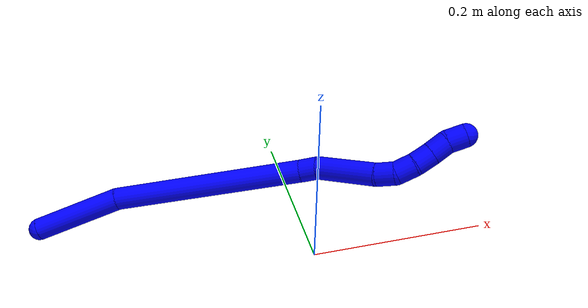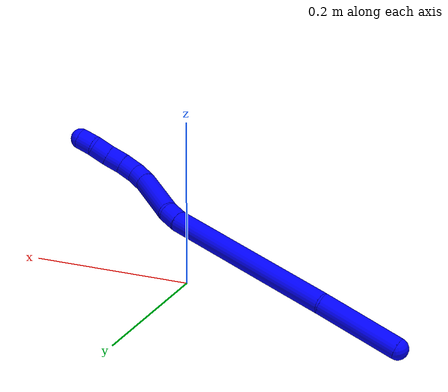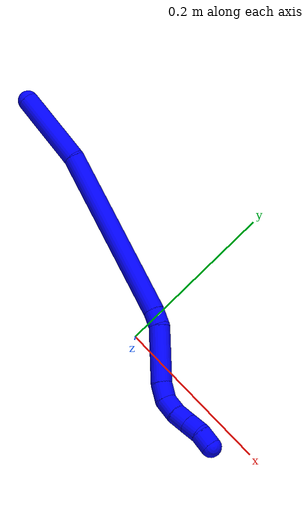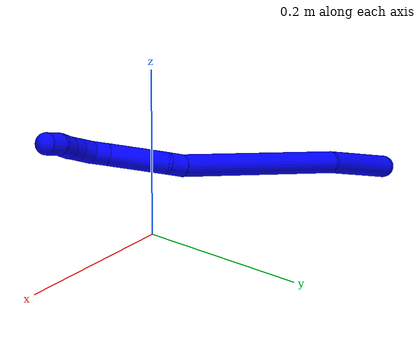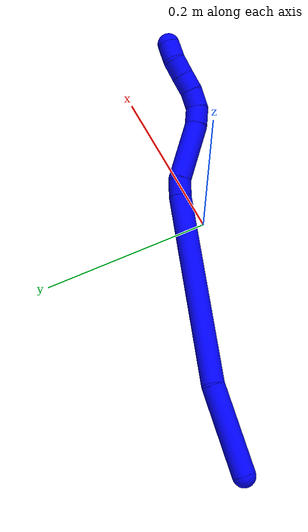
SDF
<sdf version="1.7">
 <world name="default">
  <plugin name="TubeGeneratorPlugin" filename="libtube_generator_plugin.so"/>
  <model name="photoneo_s_sensor">
   <static>1</static>
   <pose>0 0 2 1.57079 1.57079 3.14159</pose>
   <link name="link">
    <inertial><mass>0.1</mass></inertial>
    <sensor name="sensor" type="depth">
     <update_rate>30</update_rate>
     <camera>
      <horizontal_fov>1.22</horizontal_fov>
      <image><width>1920</width><height>1200</height><format>B8G8R8</format></image>
      <clip><near>0.1</near><far>4</far></clip>
      <depth_camera><output>points</output></depth_camera>
     </camera>
     <plugin name="camera_plugin" filename="libgazebo_ros_depth_camera.so">
      <baseline>0.2</baseline>
      <alwaysOn>1</alwaysOn>
      <updateRate>0.0</updateRate>
      <cameraName>camera_ir</cameraName>
      <imageTopicName>/camera/color/image_raw</imageTopicName>
      <cameraInfoTopicName>/camera/color/camera_info</cameraInfoTopicName>
      <depthImageTopicName>/camera/depth/image_raw</depthImageTopicName>
      <depthImageCameraInfoTopicName>/camera/depth/camera_info</depthImageCameraInfoTopicName>
      <pointCloudTopicName>/camera/depth/points</pointCloudTopicName>
      <frameName>fr_optical</frameName>
      <pointCloudCutoff>0.1</pointCloudCutoff>
      <pointCloudCutoffMax>2.0</pointCloudCutoffMax>
      <distortionK1>0</distortionK1>
      <distortionK2>0</distortionK2>
      <distortionK3>0</distortionK3>
      <distortionT1>0</distortionT1>
      <distortionT2>0</distortionT2>
      <CxPrime>0</CxPrime>
      <Cx>0</Cx>
      <Cy>0</Cy>
      <focalLength>0</focalLength>
      <hackBaseline>0</hackBaseline>
     </plugin>
    </sensor>
   </link>
  </model>
  <gravity>0 0 -9.8</gravity>
  <magnetic_field>6e-06 2.3e-05 -4.2e-05</magnetic_field>
  <atmosphere type="adiabatic"/>
  <physics name="default_physics" default="0" type="ode">
   <max_step_size>0.003</max_step_size>
   <real_time_factor>1</real_time_factor>
   <real_time_update_rate>1000</real_time_update_rate>
   <max_contacts>10000</max_contacts>
   <ode>
    <solver>
     <type>quick</type>
     <iters>100</iters>
     <sor>1.3</sor>
     <use_dynamic_moi_rescaling>0</use_dynamic_moi_rescaling>
    </solver>
    <constraints>
     <contact_max_correcting_vel>0</contact_max_correcting_vel>
     <contact_surface_layer>0.001</contact_surface_layer>
     <cfm>0</cfm>
     <erp>0.2</erp>
    </constraints>
   </ode>
  </physics>
  <scene><ambient>0.4 0.4 0.4 1</ambient><background>0.7 0.7 0.7 1</background><shadows>0</shadows></scene>
  <audio><device>default</device></audio>
  <spherical_coordinates>
   <surface_model>EARTH_WGS84</surface_model>
   <latitude_deg>0</latitude_deg>
   <longitude_deg>0</longitude_deg>
   <elevation>0</elevation>
   <heading_deg>0</heading_deg>
  </spherical_coordinates>
  <model name="bin">
   <static>1</static>
   <link name="bottom">
    <collision name="collision-bottom">
     <pose>0 0 -0.01 0 -0 0</pose>
     <geometry><box><size>0.8 0.6 0.02</size></box></geometry>
     <surface>
      <friction><ode><mu>100</mu><mu2>100</mu2></ode></friction>
      <contact><collide_bitmask>65535</collide_bitmask></contact>
     </surface>
    </collision>
   </link>
   <link name="west_wall">
    <collision name="collision-west_wall">
     <pose>-0.41 0 0.1 0 -0 0</pose>
     <geometry><box><size>0.02 0.6 0.2</size></box></geometry>
     <surface>
      <friction><ode><mu>100</mu><mu2>100</mu2></ode></friction>
      <contact><collide_bitmask>65535</collide_bitmask></contact>
     </surface>
    </collision>
   </link>
   <link name="east_wall">
    <collision name="collision-east_wall">
     <pose>0.41 0 0.1 0 -0 0</pose>
     <geometry><box><size>0.02 0.6 0.2</size></box></geometry>
     <surface>
      <friction><ode><mu>100</mu><mu2>100</mu2></ode></friction>
      <contact><collide_bitmask>65535</collide_bitmask></contact>
     </surface>
    </collision>
   </link>
   <link name="south_wall">
    <collision name="collision-south_wall">
     <pose>0 -0.31 0.1 0 -0 0</pose>
     <geometry><box><size>0.8 0.02 0.2</size></box></geometry>
     <surface>
      <friction><ode><mu>100</mu><mu2>100</mu2></ode></friction>
      <contact><collide_bitmask>65535</collide_bitmask></contact>
     </surface>
    </collision>
   </link>
   <link name="north_wall">
    <collision name="collision-north_wall">
     <pose>0 0.31 0.1 0 -0 0</pose>
     <geometry><box><size>0.8 0.02 0.2</size></box></geometry>
     <surface>
      <friction><ode><mu>100</mu><mu2>100</mu2></ode></friction>
      <contact><collide_bitmask>65535</collide_bitmask></contact>
     </surface>
    </collision>
   </link>
  </model>
  <model name="1">
   <static>0</static>
   <link name="1">
    <collision name="collision-cylinder-e_1_1_4">
     <pose>0.043806 -0.004616 0.021201 0.214365 1.11091 0.133356</pose>
     <geometry><cylinder><radius>0.0125</radius><length>0.097769</length></cylinder></geometry>
     <surface>
      <friction><ode><mu>1.16</mu><mu2>1.16</mu2><slip1>0</slip1><slip2>0</slip2></ode></friction>
      <contact><ode><kp>1e+06</kp><kd>1</kd><max_vel>0</max_vel><min_depth>0.001</min_depth></ode></contact>
     </surface>
    </collision>
    <visual name="visual-cylinder-e_1_1_4">
     <pose>0.043806 -0.004616 0.021201 0.214365 1.11091 0.133356</pose>
     <geometry><cylinder><radius>0.0125</radius><length>0.097769</length></cylinder></geometry>
     <material><ambient>0 0 1 1</ambient></material>
    </visual>
    <collision name="collision-cylinder-e_2_4_5">
     <pose>0.186159 -0.035204 0.07125 0.732995 1.19556 0.511265</pose>
     <geometry><cylinder><radius>0.0125</radius><length>0.211836</length></cylinder></geometry>
     <surface>
      <friction><ode><mu>1.16</mu><mu2>1.16</mu2><slip1>0</slip1><slip2>0</slip2></ode></friction>
      <contact><ode><kp>1e+06</kp><kd>1</kd><max_vel>0</max_vel><min_depth>0.001</min_depth></ode></contact>
     </surface>
    </collision>
    <visual name="visual-cylinder-e_2_4_5">
     <pose>0.186159 -0.035204 0.07125 0.732995 1.19556 0.511265</pose>
     <geometry><cylinder><radius>0.0125</radius><length>0.211836</length></cylinder></geometry>
     <material><ambient>0 0 1 1</ambient></material>
    </visual>
    <collision name="collision-cylinder-e_3_5_6">
     <pose>0.293303 -0.064936 0.103636 0.815657 1.02998 0.479608</pose>
     <geometry><cylinder><radius>0.0125</radius><length>0.020052</length></cylinder></geometry>
     <surface>
      <friction><ode><mu>1.16</mu><mu2>1.16</mu2><slip1>0</slip1><slip2>0</slip2></ode></friction>
      <contact><ode><kp>1e+06</kp><kd>1</kd><max_vel>0</max_vel><min_depth>0.001</min_depth></ode></contact>
     </surface>
    </collision>
    <visual name="visual-cylinder-e_3_5_6">
     <pose>0.293303 -0.064936 0.103636 0.815657 1.02998 0.479608</pose>
     <geometry><cylinder><radius>0.0125</radius><length>0.020052</length></cylinder></geometry>
     <material><ambient>0 0 1 1</ambient></material>
    </visual>
    <collision name="collision-cylinder-e_4_6_7">
     <pose>0.327905 -0.090076 0.11279 1.31394 0.86629 0.685184</pose>
     <geometry><cylinder><radius>0.0125</radius><length>0.068266</length></cylinder></geometry>
     <surface>
      <friction><ode><mu>1.16</mu><mu2>1.16</mu2><slip1>0</slip1><slip2>0</slip2></ode></friction>
      <contact><ode><kp>1e+06</kp><kd>1</kd><max_vel>0</max_vel><min_depth>0.001</min_depth></ode></contact>
     </surface>
    </collision>
    <visual name="visual-cylinder-e_4_6_7">
     <pose>0.327905 -0.090076 0.11279 1.31394 0.86629 0.685184</pose>
     <geometry><cylinder><radius>0.0125</radius><length>0.068266</length></cylinder></geometry>
     <material><ambient>0 0 1 1</ambient></material>
    </visual>
    <collision name="collision-cylinder-e_5_7_8">
     <pose>0.362709 -0.116273 0.121342 1.02334 1.00061 0.595737</pose>
     <geometry><cylinder><radius>0.0125</radius><length>0.020898</length></cylinder></geometry>
     <surface>
      <friction><ode><mu>1.16</mu><mu2>1.16</mu2><slip1>0</slip1><slip2>0</slip2></ode></friction>
      <contact><ode><kp>1e+06</kp><kd>1</kd><max_vel>0</max_vel><min_depth>0.001</min_depth></ode></contact>
     </surface>
    </collision>
    <visual name="visual-cylinder-e_5_7_8">
     <pose>0.362709 -0.116273 0.121342 1.02334 1.00061 0.595737</pose>
     <geometry><cylinder><radius>0.0125</radius><length>0.020898</length></cylinder></geometry>
     <material><ambient>0 0 1 1</ambient></material>
    </visual>
    <collision name="collision-cylinder-e_6_8_9">
     <pose>0.380377 -0.122195 0.129713 0.200644 1.01208 0.11145</pose>
     <geometry><cylinder><radius>0.0125</radius><length>0.020928</length></cylinder></geometry>
     <surface>
      <friction><ode><mu>1.16</mu><mu2>1.16</mu2><slip1>0</slip1><slip2>0</slip2></ode></friction>
      <contact><ode><kp>1e+06</kp><kd>1</kd><max_vel>0</max_vel><min_depth>0.001</min_depth></ode></contact>
     </surface>
    </collision>
    <visual name="visual-cylinder-e_6_8_9">
     <pose>0.380377 -0.122195 0.129713 0.200644 1.01208 0.11145</pose>
     <geometry><cylinder><radius>0.0125</radius><length>0.020928</length></cylinder></geometry>
     <material><ambient>0 0 1 1</ambient></material>
    </visual>
    <collision name="collision-cylinder-e_7_9_10">
     <pose>0.397523 -0.122427 0.140827 -0.152699 0.963778 -0.079977</pose>
     <geometry><cylinder><radius>0.0125</radius><length>0.020143</length></cylinder></geometry>
     <surface>
      <friction><ode><mu>1.16</mu><mu2>1.16</mu2><slip1>0</slip1><slip2>0</slip2></ode></friction>
      <contact><ode><kp>1e+06</kp><kd>1</kd><max_vel>0</max_vel><min_depth>0.001</min_depth></ode></contact>
     </surface>
    </collision>
    <visual name="visual-cylinder-e_7_9_10">
     <pose>0.397523 -0.122427 0.140827 -0.152699 0.963778 -0.079977</pose>
     <geometry><cylinder><radius>0.0125</radius><length>0.020143</length></cylinder></geometry>
     <material><ambient>0 0 1 1</ambient></material>
    </visual>
    <collision name="collision-cylinder-e_8_10_11">
     <pose>0.413564 -0.120807 0.152816 -0.117677 0.885178 -0.055822</pose>
     <geometry><cylinder><radius>0.0125</radius><length>0.020073</length></cylinder></geometry>
     <surface>
      <friction><ode><mu>1.16</mu><mu2>1.16</mu2><slip1>0</slip1><slip2>0</slip2></ode></friction>
      <contact><ode><kp>1e+06</kp><kd>1</kd><max_vel>0</max_vel><min_depth>0.001</min_depth></ode></contact>
     </surface>
    </collision>
    <visual name="visual-cylinder-e_8_10_11">
     <pose>0.413564 -0.120807 0.152816 -0.117677 0.885178 -0.055822</pose>
     <geometry><cylinder><radius>0.0125</radius><length>0.020073</length></cylinder></geometry>
     <material><ambient>0 0 1 1</ambient></material>
    </visual>
    <collision name="collision-cylinder-e_9_11_2">
     <pose>0.430448 -0.120997 0.163172 0.227428 1.14344 0.146697</pose>
     <geometry><cylinder><radius>0.0125</radius><length>0.020034</length></cylinder></geometry>
     <surface>
      <friction><ode><mu>1.16</mu><mu2>1.16</mu2><slip1>0</slip1><slip2>0</slip2></ode></friction>
      <contact><ode><kp>1e+06</kp><kd>1</kd><max_vel>0</max_vel><min_depth>0.001</min_depth></ode></contact>
     </surface>
    </collision>
    <visual name="visual-cylinder-e_9_11_2">
     <pose>0.430448 -0.120997 0.163172 0.227428 1.14344 0.146697</pose>
     <geometry><cylinder><radius>0.0125</radius><length>0.020034</length></cylinder></geometry>
     <material><ambient>0 0 1 1</ambient></material>
    </visual>
    <collision name="collision-sphere-2">
     <pose>0.439564 -0.121933 0.167217 0 -0 0</pose>
     <geometry><sphere><radius>0.0125</radius></sphere></geometry>
     <surface>
      <friction><ode><mu>1.16</mu><mu2>1.16</mu2><slip1>0</slip1><slip2>0</slip2></ode></friction>
      <contact><ode><kp>1e+06</kp><kd>1</kd><max_vel>0</max_vel><min_depth>0.001</min_depth></ode></contact>
     </surface>
    </collision>
    <visual name="visual-sphere-2">
     <pose>0.439564 -0.121933 0.167217 0 -0 0</pose>
     <geometry><sphere><radius>0.0125</radius></sphere></geometry>
     <material><ambient>0 0 1 1</ambient></material>
    </visual>
    <collision name="collision-sphere-11">
     <pose>0.421332 -0.12006 0.159127 0 -0 0</pose>
     <geometry><sphere><radius>0.0125</radius></sphere></geometry>
     <surface>
      <friction><ode><mu>1.16</mu><mu2>1.16</mu2><slip1>0</slip1><slip2>0</slip2></ode></friction>
      <contact><ode><kp>1e+06</kp><kd>1</kd><max_vel>0</max_vel><min_depth>0.001</min_depth></ode></contact>
     </surface>
    </collision>
    <visual name="visual-sphere-11">
     <pose>0.421332 -0.12006 0.159127 0 -0 0</pose>
     <geometry><sphere><radius>0.0125</radius></sphere></geometry>
     <material><ambient>0 0 1 1</ambient></material>
    </visual>
    <collision name="collision-sphere-10">
     <pose>0.405795 -0.121553 0.146506 0 -0 0</pose>
     <geometry><sphere><radius>0.0125</radius></sphere></geometry>
     <surface>
      <friction><ode><mu>1.16</mu><mu2>1.16</mu2><slip1>0</slip1><slip2>0</slip2></ode></friction>
      <contact><ode><kp>1e+06</kp><kd>1</kd><max_vel>0</max_vel><min_depth>0.001</min_depth></ode></contact>
     </surface>
    </collision>
    <visual name="visual-sphere-10">
     <pose>0.405795 -0.121553 0.146506 0 -0 0</pose>
     <geometry><sphere><radius>0.0125</radius></sphere></geometry>
     <material><ambient>0 0 1 1</ambient></material>
    </visual>
    <collision name="collision-sphere-9">
     <pose>0.38925 -0.1233 0.135149 0 -0 0</pose>
     <geometry><sphere><radius>0.0125</radius></sphere></geometry>
     <surface>
      <friction><ode><mu>1.16</mu><mu2>1.16</mu2><slip1>0</slip1><slip2>0</slip2></ode></friction>
      <contact><ode><kp>1e+06</kp><kd>1</kd><max_vel>0</max_vel><min_depth>0.001</min_depth></ode></contact>
     </surface>
    </collision>
    <visual name="visual-sphere-9">
     <pose>0.38925 -0.1233 0.135149 0 -0 0</pose>
     <geometry><sphere><radius>0.0125</radius></sphere></geometry>
     <material><ambient>0 0 1 1</ambient></material>
    </visual>
    <collision name="collision-sphere-4">
     <pose>0.087611 -0.009231 0.042402 0 -0 0</pose>
     <geometry><sphere><radius>0.0125</radius></sphere></geometry>
     <surface>
      <friction><ode><mu>1.16</mu><mu2>1.16</mu2><slip1>0</slip1><slip2>0</slip2></ode></friction>
      <contact><ode><kp>1e+06</kp><kd>1</kd><max_vel>0</max_vel><min_depth>0.001</min_depth></ode></contact>
     </surface>
    </collision>
    <visual name="visual-sphere-4">
     <pose>0.087611 -0.009231 0.042402 0 -0 0</pose>
     <geometry><sphere><radius>0.0125</radius></sphere></geometry>
     <material><ambient>0 0 1 1</ambient></material>
    </visual>
    <collision name="collision-sphere-1">
     <geometry><sphere><radius>0.0125</radius></sphere></geometry>
     <surface>
      <friction><ode><mu>1.16</mu><mu2>1.16</mu2><slip1>0</slip1><slip2>0</slip2></ode></friction>
      <contact><ode><kp>1e+06</kp><kd>1</kd><max_vel>0</max_vel><min_depth>0.001</min_depth></ode></contact>
     </surface>
    </collision>
    <visual name="visual-sphere-1">
     <geometry><sphere><radius>0.0125</radius></sphere></geometry>
     <material><ambient>0 0 1 1</ambient></material>
    </visual>
    <collision name="collision-sphere-8">
     <pose>0.371505 -0.121089 0.124278 0 -0 0</pose>
     <geometry><sphere><radius>0.0125</radius></sphere></geometry>
     <surface>
      <friction><ode><mu>1.16</mu><mu2>1.16</mu2><slip1>0</slip1><slip2>0</slip2></ode></friction>
      <contact><ode><kp>1e+06</kp><kd>1</kd><max_vel>0</max_vel><min_depth>0.001</min_depth></ode></contact>
     </surface>
    </collision>
    <visual name="visual-sphere-8">
     <pose>0.371505 -0.121089 0.124278 0 -0 0</pose>
     <geometry><sphere><radius>0.0125</radius></sphere></geometry>
     <material><ambient>0 0 1 1</ambient></material>
    </visual>
    <collision name="collision-sphere-5">
     <pose>0.284708 -0.061177 0.100098 0 -0 0</pose>
     <geometry><sphere><radius>0.0125</radius></sphere></geometry>
     <surface>
      <friction><ode><mu>1.16</mu><mu2>1.16</mu2><slip1>0</slip1><slip2>0</slip2></ode></friction>
      <contact><ode><kp>1e+06</kp><kd>1</kd><max_vel>0</max_vel><min_depth>0.001</min_depth></ode></contact>
     </surface>
    </collision>
    <visual name="visual-sphere-5">
     <pose>0.284708 -0.061177 0.100098 0 -0 0</pose>
     <geometry><sphere><radius>0.0125</radius></sphere></geometry>
     <material><ambient>0 0 1 1</ambient></material>
    </visual>
    <collision name="collision-sphere-6">
     <pose>0.301898 -0.068695 0.107174 0 -0 0</pose>
     <geometry><sphere><radius>0.0125</radius></sphere></geometry>
     <surface>
      <friction><ode><mu>1.16</mu><mu2>1.16</mu2><slip1>0</slip1><slip2>0</slip2></ode></friction>
      <contact><ode><kp>1e+06</kp><kd>1</kd><max_vel>0</max_vel><min_depth>0.001</min_depth></ode></contact>
     </surface>
    </collision>
    <visual name="visual-sphere-6">
     <pose>0.301898 -0.068695 0.107174 0 -0 0</pose>
     <geometry><sphere><radius>0.0125</radius></sphere></geometry>
     <material><ambient>0 0 1 1</ambient></material>
    </visual>
    <collision name="collision-sphere-7">
     <pose>0.353912 -0.111457 0.118406 0 -0 0</pose>
     <geometry><sphere><radius>0.0125</radius></sphere></geometry>
     <surface>
      <friction><ode><mu>1.16</mu><mu2>1.16</mu2><slip1>0</slip1><slip2>0</slip2></ode></friction>
      <contact><ode><kp>1e+06</kp><kd>1</kd><max_vel>0</max_vel><min_depth>0.001</min_depth></ode></contact>
     </surface>
    </collision>
    <visual name="visual-sphere-7">
     <pose>0.353912 -0.111457 0.118406 0 -0 0</pose>
     <geometry><sphere><radius>0.0125</radius></sphere></geometry>
     <material><ambient>0 0 1 1</ambient></material>
    </visual>
    <inertial>
     <pose>0.224915 -0.055325 0.082735 0 -0 0</pose>
     <mass>0.5</mass>
     <inertia>
      <ixx>0.000507</ixx>
      <ixy>0</ixy>
      <ixz>0</ixz>
      <iyy>0.001023</iyy>
      <iyz>0</iyz>
      <izz>-0.000611</izz>
     </inertia>
    </inertial>
   </link>
   <pose>-0.296649 0.105772 0.011495 -0.232389 0.105938 -0.108178</pose>
  </model>
 </world>
</sdf>
